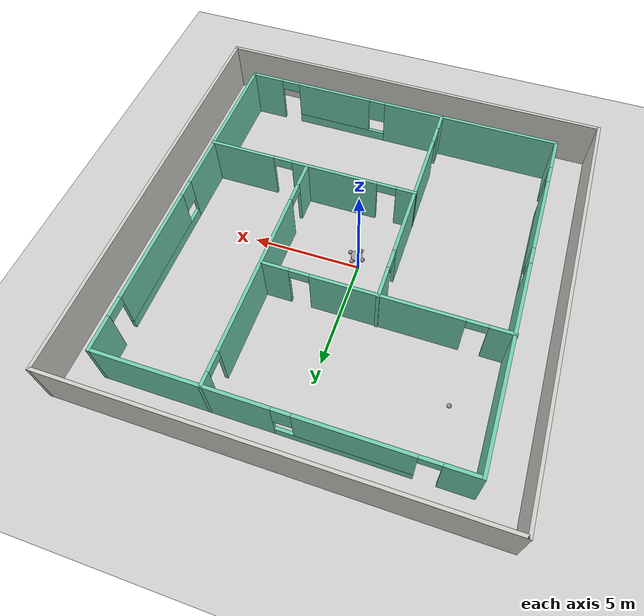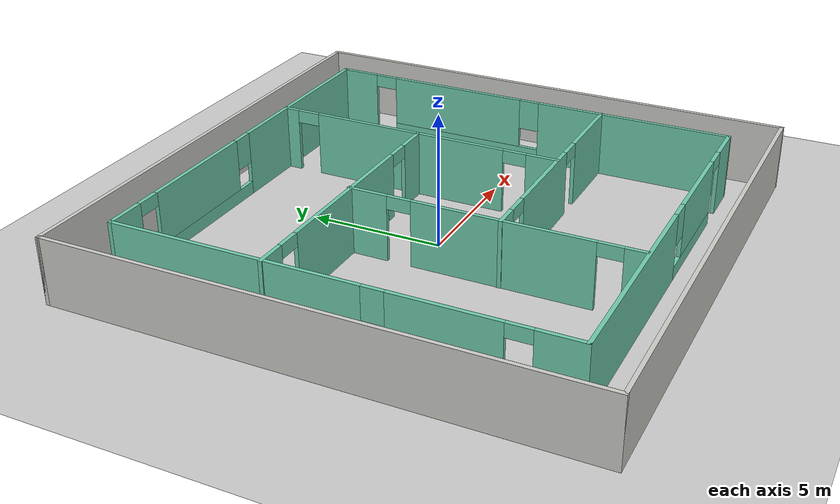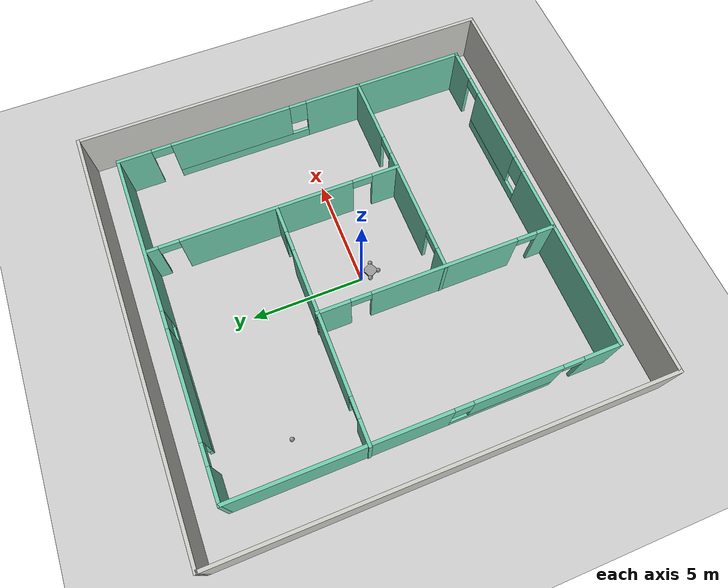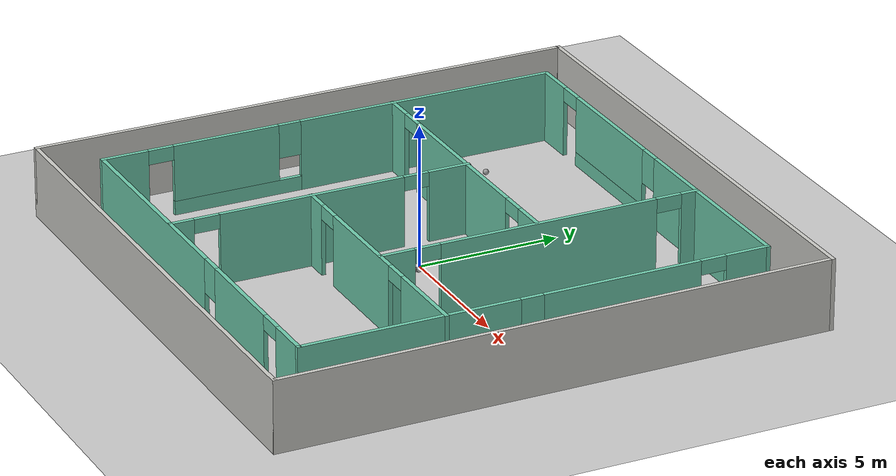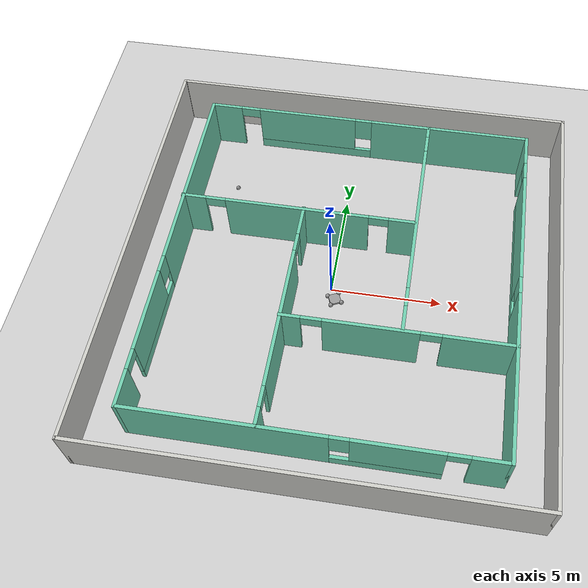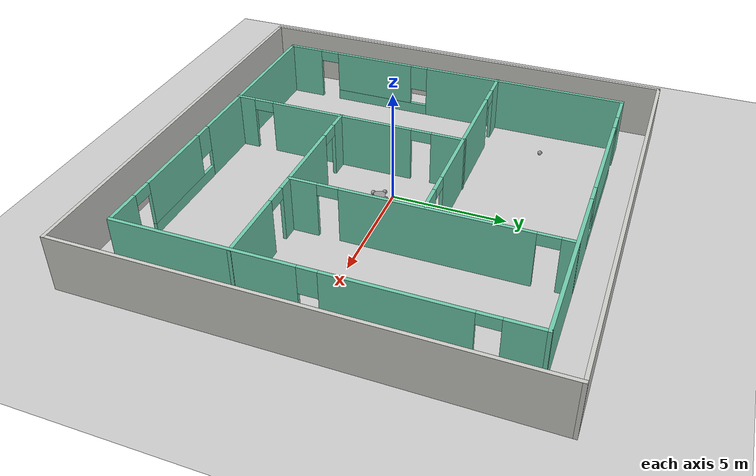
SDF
<sdf version="1.6">
 <world name="default">
  <model name="ground_plane">
   <static>1</static>
   <link name="link">
    <collision name="collision">
     <geometry><plane><normal>0 0 1</normal><size>100 100</size></plane></geometry>
     <surface>
      <contact><collide_bitmask>65535</collide_bitmask></contact>
      <friction><ode><mu>100</mu><mu2>50</mu2></ode></friction>
     </surface>
    </collision>
    <visual name="visual">
     <cast_shadows>0</cast_shadows>
     <geometry><plane><normal>0 0 1</normal><size>100 100</size></plane></geometry>
     <material>
      <script><uri>file://media/materials/scripts/gazebo.material</uri><name>Gazebo/Grey</name></script>
     </material>
    </visual>
   </link>
  </model>
  <model name="Building">
   <pose>0.43599 0.01676 0 0 -0 0</pose>
   <link name="Wall_101">
    <pose>-2.08663 -2.75527 0 0 -0 -1.5708</pose>
    <visual name="Wall_101_Visual_0">
     <pose>-4.61745 0 1.25 0 -0 0</pose>
     <geometry><box><size>1.51509 0.15 2.5</size></box></geometry>
     <material>
      <script><uri>file://media/materials/scripts/gazebo.material</uri><name>Gazebo/Grey</name></script>
      <ambient>0.435294 0.796078 0.67451 1</ambient>
     </material>
     <meta><layer>0</layer></meta>
    </visual>
    <collision name="Wall_101_Collision_0">
     <geometry><box><size>1.51509 0.15 2.5</size></box></geometry>
     <pose>-4.61745 0 1.25 0 -0 0</pose>
    </collision>
    <visual name="Wall_101_Visual_1">
     <pose>0.323003 0 1.25 0 -0 0</pose>
     <geometry><box><size>6.56583 0.15 2.5</size></box></geometry>
     <material>
      <script><uri>file://media/materials/scripts/gazebo.material</uri><name>Gazebo/Grey</name></script>
      <ambient>0.435294 0.796078 0.67451 1</ambient>
     </material>
     <meta><layer>0</layer></meta>
    </visual>
    <collision name="Wall_101_Collision_1">
     <geometry><box><size>6.56583 0.15 2.5</size></box></geometry>
     <pose>0.323003 0 1.25 0 -0 0</pose>
    </collision>
    <visual name="Wall_101_Visual_2">
     <pose>4.94046 0 1.25 0 -0 0</pose>
     <geometry><box><size>0.869084 0.15 2.5</size></box></geometry>
     <material>
      <script><uri>file://media/materials/scripts/gazebo.material</uri><name>Gazebo/Grey</name></script>
      <ambient>0.435294 0.796078 0.67451 1</ambient>
     </material>
     <meta><layer>0</layer></meta>
    </visual>
    <collision name="Wall_101_Collision_2">
     <geometry><box><size>0.869084 0.15 2.5</size></box></geometry>
     <pose>4.94046 0 1.25 0 -0 0</pose>
    </collision>
    <visual name="Wall_101_Visual_3">
     <pose>-3.40991 0 2.25 0 -0 0</pose>
     <geometry><box><size>0.9 0.15 0.5</size></box></geometry>
     <material>
      <script><uri>file://media/materials/scripts/gazebo.material</uri><name>Gazebo/Grey</name></script>
      <ambient>0.435294 0.796078 0.67451 1</ambient>
     </material>
     <meta><layer>0</layer></meta>
    </visual>
    <collision name="Wall_101_Collision_3">
     <geometry><box><size>0.9 0.15 0.5</size></box></geometry>
     <pose>-3.40991 0 2.25 0 -0 0</pose>
    </collision>
    <visual name="Wall_101_Visual_4">
     <pose>4.05592 0 2.25 0 -0 0</pose>
     <geometry><box><size>0.9 0.15 0.5</size></box></geometry>
     <material>
      <script><uri>file://media/materials/scripts/gazebo.material</uri><name>Gazebo/Grey</name></script>
      <ambient>0.435294 0.796078 0.67451 1</ambient>
     </material>
     <meta><layer>0</layer></meta>
    </visual>
    <collision name="Wall_101_Collision_4">
     <geometry><box><size>0.9 0.15 0.5</size></box></geometry>
     <pose>4.05592 0 2.25 0 -0 0</pose>
    </collision>
   </link>
   <link name="Wall_84">
    <collision name="Wall_84_Collision">
     <geometry><box><size>19.5 0.15 2.5</size></box></geometry>
     <pose>0 0 1.25 0 -0 0</pose>
    </collision>
    <visual name="Wall_84_Visual">
     <pose>0 0 1.25 0 -0 0</pose>
     <geometry><box><size>19.5 0.15 2.5</size></box></geometry>
     <material>
      <script><uri>file://media/materials/scripts/gazebo.material</uri><name>Gazebo/CeilingTiled</name></script>
      <ambient>1 1 1 1</ambient>
     </material>
     <meta><layer>0</layer></meta>
    </visual>
    <pose>-9.425 0 0 0 -0 -1.5708</pose>
   </link>
   <link name="Wall_85">
    <collision name="Wall_85_Collision">
     <geometry><box><size>19 0.15 2.5</size></box></geometry>
     <pose>0 0 1.25 0 -0 0</pose>
    </collision>
    <visual name="Wall_85_Visual">
     <pose>0 0 1.25 0 -0 0</pose>
     <geometry><box><size>19 0.15 2.5</size></box></geometry>
     <material>
      <script><uri>file://media/materials/scripts/gazebo.material</uri><name>Gazebo/CeilingTiled</name></script>
      <ambient>1 1 1 1</ambient>
     </material>
     <meta><layer>0</layer></meta>
    </visual>
    <pose>0 -9.675 0 0 -0 0</pose>
   </link>
   <link name="Wall_86">
    <collision name="Wall_86_Collision">
     <geometry><box><size>19.5 0.15 2.5</size></box></geometry>
     <pose>0 0 1.25 0 -0 0</pose>
    </collision>
    <visual name="Wall_86_Visual">
     <pose>0 0 1.25 0 -0 0</pose>
     <geometry><box><size>19.5 0.15 2.5</size></box></geometry>
     <material>
      <script><uri>file://media/materials/scripts/gazebo.material</uri><name>Gazebo/CeilingTiled</name></script>
      <ambient>1 1 1 1</ambient>
     </material>
     <meta><layer>0</layer></meta>
    </visual>
    <pose>9.425 0 0 0 -0 1.5708</pose>
   </link>
   <link name="Wall_87">
    <collision name="Wall_87_Collision">
     <geometry><box><size>19 0.15 2.5</size></box></geometry>
     <pose>0 0 1.25 0 -0 0</pose>
    </collision>
    <visual name="Wall_87_Visual">
     <pose>0 0 1.25 0 -0 0</pose>
     <geometry><box><size>19 0.15 2.5</size></box></geometry>
     <material>
      <script><uri>file://media/materials/scripts/gazebo.material</uri><name>Gazebo/CeilingTiled</name></script>
      <ambient>1 1 1 1</ambient>
     </material>
     <meta><layer>0</layer></meta>
    </visual>
    <pose>0 9.675 0 0 -0 3.14159</pose>
   </link>
   <link name="Wall_88">
    <collision name="Wall_88_Collision">
     <geometry><box><size>0.16 0.15 2.5</size></box></geometry>
     <pose>0 0 1.25 0 -0 0</pose>
    </collision>
    <visual name="Wall_88_Visual">
     <pose>0 0 1.25 0 -0 0</pose>
     <geometry><box><size>0.16 0.15 2.5</size></box></geometry>
     <material>
      <script><uri>file://media/materials/scripts/gazebo.material</uri><name>Gazebo/Grey</name></script>
      <ambient>1 1 1 1</ambient>
     </material>
     <meta><layer>0</layer></meta>
    </visual>
    <pose>-9.42 9.675 0 0 -0 0</pose>
   </link>
   <link name="Wall_90">
    <pose>-7.62558 0.103719 0 0 -0 -1.5708</pose>
    <visual name="Wall_90_Visual_0">
     <pose>-3.59802 0 1.25 0 -0 0</pose>
     <geometry><box><size>9.30396 0.15 2.5</size></box></geometry>
     <material>
      <script><uri>file://media/materials/scripts/gazebo.material</uri><name>Gazebo/Grey</name></script>
      <ambient>0.435294 0.796078 0.67451 1</ambient>
     </material>
     <meta><layer>0</layer></meta>
    </visual>
    <collision name="Wall_90_Collision_0">
     <geometry><box><size>9.30396 0.15 2.5</size></box></geometry>
     <pose>-3.59802 0 1.25 0 -0 0</pose>
    </collision>
    <visual name="Wall_90_Visual_1">
     <pose>7.40961 0 1.25 0 -0 0</pose>
     <geometry><box><size>1.68078 0.15 2.5</size></box></geometry>
     <material>
      <script><uri>file://media/materials/scripts/gazebo.material</uri><name>Gazebo/Grey</name></script>
      <ambient>0.435294 0.796078 0.67451 1</ambient>
     </material>
     <meta><layer>0</layer></meta>
    </visual>
    <collision name="Wall_90_Collision_1">
     <geometry><box><size>1.68078 0.15 2.5</size></box></geometry>
     <pose>7.40961 0 1.25 0 -0 0</pose>
    </collision>
    <visual name="Wall_90_Visual_2">
     <pose>3.36159 0 0.25 0 -0 0</pose>
     <geometry><box><size>4.61526 0.15 0.5</size></box></geometry>
     <material>
      <script><uri>file://media/materials/scripts/gazebo.material</uri><name>Gazebo/Grey</name></script>
      <ambient>0.435294 0.796078 0.67451 1</ambient>
     </material>
     <meta><layer>0</layer></meta>
    </visual>
    <collision name="Wall_90_Collision_2">
     <geometry><box><size>4.61526 0.15 0.5</size></box></geometry>
     <pose>3.36159 0 0.25 0 -0 0</pose>
    </collision>
    <visual name="Wall_90_Visual_3">
     <pose>3.76159 0 1.5 0 -0 0</pose>
     <geometry><box><size>3.81526 0.15 2</size></box></geometry>
     <material>
      <script><uri>file://media/materials/scripts/gazebo.material</uri><name>Gazebo/Grey</name></script>
      <ambient>0.435294 0.796078 0.67451 1</ambient>
     </material>
     <meta><layer>0</layer></meta>
    </visual>
    <collision name="Wall_90_Collision_3">
     <geometry><box><size>3.81526 0.15 2</size></box></geometry>
     <pose>3.76159 0 1.5 0 -0 0</pose>
    </collision>
    <visual name="Wall_90_Visual_4">
     <pose>1.45396 0 1.9 0 -0 0</pose>
     <geometry><box><size>0.8 0.15 1.2</size></box></geometry>
     <material>
      <script><uri>file://media/materials/scripts/gazebo.material</uri><name>Gazebo/Grey</name></script>
      <ambient>0.435294 0.796078 0.67451 1</ambient>
     </material>
     <meta><layer>0</layer></meta>
    </visual>
    <collision name="Wall_90_Collision_4">
     <geometry><box><size>0.8 0.15 1.2</size></box></geometry>
     <pose>1.45396 0 1.9 0 -0 0</pose>
    </collision>
    <visual name="Wall_90_Visual_5">
     <pose>6.11922 0 2.25 0 -0 0</pose>
     <geometry><box><size>0.9 0.15 0.5</size></box></geometry>
     <material>
      <script><uri>file://media/materials/scripts/gazebo.material</uri><name>Gazebo/Grey</name></script>
      <ambient>0.435294 0.796078 0.67451 1</ambient>
     </material>
     <meta><layer>0</layer></meta>
    </visual>
    <collision name="Wall_90_Collision_5">
     <geometry><box><size>0.9 0.15 0.5</size></box></geometry>
     <pose>6.11922 0 2.25 0 -0 0</pose>
    </collision>
   </link>
   <link name="Wall_91">
    <pose>0.049418 -8.07128 0 0 -0 0</pose>
    <visual name="Wall_91_Visual_0">
     <pose>-3.51293 0 1.25 0 -0 0</pose>
     <geometry><box><size>8.47414 0.15 2.5</size></box></geometry>
     <material>
      <script><uri>file://media/materials/scripts/gazebo.material</uri><name>Gazebo/Grey</name></script>
      <ambient>0.435294 0.796078 0.67451 1</ambient>
     </material>
     <meta><layer>0</layer></meta>
    </visual>
    <collision name="Wall_91_Collision_0">
     <geometry><box><size>8.47414 0.15 2.5</size></box></geometry>
     <pose>-3.51293 0 1.25 0 -0 0</pose>
    </collision>
    <visual name="Wall_91_Visual_1">
     <pose>6.94158 0 1.25 0 -0 0</pose>
     <geometry><box><size>1.61685 0.15 2.5</size></box></geometry>
     <material>
      <script><uri>file://media/materials/scripts/gazebo.material</uri><name>Gazebo/Grey</name></script>
      <ambient>0.435294 0.796078 0.67451 1</ambient>
     </material>
     <meta><layer>0</layer></meta>
    </visual>
    <collision name="Wall_91_Collision_1">
     <geometry><box><size>1.61685 0.15 2.5</size></box></geometry>
     <pose>6.94158 0 1.25 0 -0 0</pose>
    </collision>
    <visual name="Wall_91_Visual_2">
     <pose>2.97865 0 0.25 0 -0 0</pose>
     <geometry><box><size>4.50901 0.15 0.5</size></box></geometry>
     <material>
      <script><uri>file://media/materials/scripts/gazebo.material</uri><name>Gazebo/Grey</name></script>
      <ambient>0.435294 0.796078 0.67451 1</ambient>
     </material>
     <meta><layer>0</layer></meta>
    </visual>
    <collision name="Wall_91_Collision_2">
     <geometry><box><size>4.50901 0.15 0.5</size></box></geometry>
     <pose>2.97865 0 0.25 0 -0 0</pose>
    </collision>
    <visual name="Wall_91_Visual_3">
     <pose>3.37865 0 1.5 0 -0 0</pose>
     <geometry><box><size>3.70901 0.15 2</size></box></geometry>
     <material>
      <script><uri>file://media/materials/scripts/gazebo.material</uri><name>Gazebo/Grey</name></script>
      <ambient>0.435294 0.796078 0.67451 1</ambient>
     </material>
     <meta><layer>0</layer></meta>
    </visual>
    <collision name="Wall_91_Collision_3">
     <geometry><box><size>3.70901 0.15 2</size></box></geometry>
     <pose>3.37865 0 1.5 0 -0 0</pose>
    </collision>
    <visual name="Wall_91_Visual_4">
     <pose>1.12414 0 1.9 0 -0 0</pose>
     <geometry><box><size>0.8 0.15 1.2</size></box></geometry>
     <material>
      <script><uri>file://media/materials/scripts/gazebo.material</uri><name>Gazebo/Grey</name></script>
      <ambient>0.435294 0.796078 0.67451 1</ambient>
     </material>
     <meta><layer>0</layer></meta>
    </visual>
    <collision name="Wall_91_Collision_4">
     <geometry><box><size>0.8 0.15 1.2</size></box></geometry>
     <pose>1.12414 0 1.9 0 -0 0</pose>
    </collision>
    <visual name="Wall_91_Visual_5">
     <pose>5.68315 0 2.25 0 -0 0</pose>
     <geometry><box><size>0.9 0.15 0.5</size></box></geometry>
     <material>
      <script><uri>file://media/materials/scripts/gazebo.material</uri><name>Gazebo/Grey</name></script>
      <ambient>0.435294 0.796078 0.67451 1</ambient>
     </material>
     <meta><layer>0</layer></meta>
    </visual>
    <collision name="Wall_91_Collision_5">
     <geometry><box><size>0.9 0.15 0.5</size></box></geometry>
     <pose>5.68315 0 2.25 0 -0 0</pose>
    </collision>
   </link>
   <link name="Wall_92">
    <pose>7.72442 0.103719 0 0 -0 1.5708</pose>
    <visual name="Wall_92_Visual_0">
     <pose>-4.42448 0 1.25 0 -0 0</pose>
     <geometry><box><size>7.65104 0.15 2.5</size></box></geometry>
     <material>
      <script><uri>file://media/materials/scripts/gazebo.material</uri><name>Gazebo/Grey</name></script>
      <ambient>0.435294 0.796078 0.67451 1</ambient>
     </material>
     <meta><layer>0</layer></meta>
    </visual>
    <collision name="Wall_92_Collision_0">
     <geometry><box><size>7.65104 0.15 2.5</size></box></geometry>
     <pose>-4.42448 0 1.25 0 -0 0</pose>
    </collision>
    <visual name="Wall_92_Visual_1">
     <pose>7.45345 0 1.25 0 -0 0</pose>
     <geometry><box><size>1.5931 0.15 2.5</size></box></geometry>
     <material>
      <script><uri>file://media/materials/scripts/gazebo.material</uri><name>Gazebo/Grey</name></script>
      <ambient>0.435294 0.796078 0.67451 1</ambient>
     </material>
     <meta><layer>0</layer></meta>
    </visual>
    <collision name="Wall_92_Collision_1">
     <geometry><box><size>1.5931 0.15 2.5</size></box></geometry>
     <pose>7.45345 0 1.25 0 -0 0</pose>
    </collision>
    <visual name="Wall_92_Visual_2">
     <pose>2.57897 0 0.25 0 -0 0</pose>
     <geometry><box><size>6.35586 0.15 0.5</size></box></geometry>
     <material>
      <script><uri>file://media/materials/scripts/gazebo.material</uri><name>Gazebo/Grey</name></script>
      <ambient>0.435294 0.796078 0.67451 1</ambient>
     </material>
     <meta><layer>0</layer></meta>
    </visual>
    <collision name="Wall_92_Collision_2">
     <geometry><box><size>6.35586 0.15 0.5</size></box></geometry>
     <pose>2.57897 0 0.25 0 -0 0</pose>
    </collision>
    <visual name="Wall_92_Visual_3">
     <pose>2.97897 0 1.5 0 -0 0</pose>
     <geometry><box><size>5.55586 0.15 2</size></box></geometry>
     <material>
      <script><uri>file://media/materials/scripts/gazebo.material</uri><name>Gazebo/Grey</name></script>
      <ambient>0.435294 0.796078 0.67451 1</ambient>
     </material>
     <meta><layer>0</layer></meta>
    </visual>
    <collision name="Wall_92_Collision_3">
     <geometry><box><size>5.55586 0.15 2</size></box></geometry>
     <pose>2.97897 0 1.5 0 -0 0</pose>
    </collision>
    <visual name="Wall_92_Visual_4">
     <pose>-0.198964 0 1.9 0 -0 0</pose>
     <geometry><box><size>0.8 0.15 1.2</size></box></geometry>
     <material>
      <script><uri>file://media/materials/scripts/gazebo.material</uri><name>Gazebo/Grey</name></script>
      <ambient>0.435294 0.796078 0.67451 1</ambient>
     </material>
     <meta><layer>0</layer></meta>
    </visual>
    <collision name="Wall_92_Collision_4">
     <geometry><box><size>0.8 0.15 1.2</size></box></geometry>
     <pose>-0.198964 0 1.9 0 -0 0</pose>
    </collision>
    <visual name="Wall_92_Visual_5">
     <pose>6.2069 0 2.25 0 -0 0</pose>
     <geometry><box><size>0.9 0.15 0.5</size></box></geometry>
     <material>
      <script><uri>file://media/materials/scripts/gazebo.material</uri><name>Gazebo/Grey</name></script>
      <ambient>0.435294 0.796078 0.67451 1</ambient>
     </material>
     <meta><layer>0</layer></meta>
    </visual>
    <collision name="Wall_92_Collision_5">
     <geometry><box><size>0.9 0.15 0.5</size></box></geometry>
     <pose>6.2069 0 2.25 0 -0 0</pose>
    </collision>
   </link>
   <link name="Wall_93">
    <pose>0.049418 8.27872 0 0 -0 3.14159</pose>
    <visual name="Wall_93_Visual_0">
     <pose>-3.97565 0 1.25 0 -0 0</pose>
     <geometry><box><size>7.5487 0.15 2.5</size></box></geometry>
     <material>
      <script><uri>file://media/materials/scripts/gazebo.material</uri><name>Gazebo/Grey</name></script>
      <ambient>0.435294 0.796078 0.67451 1</ambient>
     </material>
     <meta><layer>0</layer></meta>
    </visual>
    <collision name="Wall_93_Collision_0">
     <geometry><box><size>7.5487 0.15 2.5</size></box></geometry>
     <pose>-3.97565 0 1.25 0 -0 0</pose>
    </collision>
    <visual name="Wall_93_Visual_1">
     <pose>6.99241 0 1.25 0 -0 0</pose>
     <geometry><box><size>1.51518 0.15 2.5</size></box></geometry>
     <material>
      <script><uri>file://media/materials/scripts/gazebo.material</uri><name>Gazebo/Grey</name></script>
      <ambient>0.435294 0.796078 0.67451 1</ambient>
     </material>
     <meta><layer>0</layer></meta>
    </visual>
    <collision name="Wall_93_Collision_1">
     <geometry><box><size>1.51518 0.15 2.5</size></box></geometry>
     <pose>6.99241 0 1.25 0 -0 0</pose>
    </collision>
    <visual name="Wall_93_Visual_2">
     <pose>2.56676 0 0.25 0 -0 0</pose>
     <geometry><box><size>5.53612 0.15 0.5</size></box></geometry>
     <material>
      <script><uri>file://media/materials/scripts/gazebo.material</uri><name>Gazebo/Grey</name></script>
      <ambient>0.435294 0.796078 0.67451 1</ambient>
     </material>
     <meta><layer>0</layer></meta>
    </visual>
    <collision name="Wall_93_Collision_2">
     <geometry><box><size>5.53612 0.15 0.5</size></box></geometry>
     <pose>2.56676 0 0.25 0 -0 0</pose>
    </collision>
    <visual name="Wall_93_Visual_3">
     <pose>2.96676 0 1.5 0 -0 0</pose>
     <geometry><box><size>4.73612 0.15 2</size></box></geometry>
     <material>
      <script><uri>file://media/materials/scripts/gazebo.material</uri><name>Gazebo/Grey</name></script>
      <ambient>0.435294 0.796078 0.67451 1</ambient>
     </material>
     <meta><layer>0</layer></meta>
    </visual>
    <collision name="Wall_93_Collision_3">
     <geometry><box><size>4.73612 0.15 2</size></box></geometry>
     <pose>2.96676 0 1.5 0 -0 0</pose>
    </collision>
    <visual name="Wall_93_Visual_4">
     <pose>0.198698 0 1.9 0 -0 0</pose>
     <geometry><box><size>0.8 0.15 1.2</size></box></geometry>
     <material>
      <script><uri>file://media/materials/scripts/gazebo.material</uri><name>Gazebo/Grey</name></script>
      <ambient>0.435294 0.796078 0.67451 1</ambient>
     </material>
     <meta><layer>0</layer></meta>
    </visual>
    <collision name="Wall_93_Collision_4">
     <geometry><box><size>0.8 0.15 1.2</size></box></geometry>
     <pose>0.198698 0 1.9 0 -0 0</pose>
    </collision>
    <visual name="Wall_93_Visual_5">
     <pose>5.78482 0 2.25 0 -0 0</pose>
     <geometry><box><size>0.9 0.15 0.5</size></box></geometry>
     <material>
      <script><uri>file://media/materials/scripts/gazebo.material</uri><name>Gazebo/Grey</name></script>
      <ambient>0.435294 0.796078 0.67451 1</ambient>
     </material>
     <meta><layer>0</layer></meta>
    </visual>
    <collision name="Wall_93_Collision_5">
     <geometry><box><size>0.9 0.15 0.5</size></box></geometry>
     <pose>5.78482 0 2.25 0 -0 0</pose>
    </collision>
   </link>
   <link name="Wall_95">
    <pose>-2.36459 2.50573 0 0 -0 0</pose>
    <visual name="Wall_95_Visual_0">
     <pose>-4.80187 0 1.25 0 -0 0</pose>
     <geometry><box><size>1.14626 0.15 2.5</size></box></geometry>
     <material>
      <script><uri>file://media/materials/scripts/gazebo.material</uri><name>Gazebo/Grey</name></script>
      <ambient>0.435294 0.796078 0.67451 1</ambient>
     </material>
     <meta><layer>0</layer></meta>
    </visual>
    <collision name="Wall_95_Collision_0">
     <geometry><box><size>1.14626 0.15 2.5</size></box></geometry>
     <pose>-4.80187 0 1.25 0 -0 0</pose>
    </collision>
    <visual name="Wall_95_Visual_1">
     <pose>-0.044669 0 1.25 0 -0 0</pose>
     <geometry><box><size>6.56814 0.15 2.5</size></box></geometry>
     <material>
      <script><uri>file://media/materials/scripts/gazebo.material</uri><name>Gazebo/Grey</name></script>
      <ambient>0.435294 0.796078 0.67451 1</ambient>
     </material>
     <meta><layer>0</layer></meta>
    </visual>
    <collision name="Wall_95_Collision_1">
     <geometry><box><size>6.56814 0.15 2.5</size></box></geometry>
     <pose>-0.044669 0 1.25 0 -0 0</pose>
    </collision>
    <visual name="Wall_95_Visual_2">
     <pose>4.7572 0 1.25 0 -0 0</pose>
     <geometry><box><size>1.2356 0.15 2.5</size></box></geometry>
     <material>
      <script><uri>file://media/materials/scripts/gazebo.material</uri><name>Gazebo/Grey</name></script>
      <ambient>0.435294 0.796078 0.67451 1</ambient>
     </material>
     <meta><layer>0</layer></meta>
    </visual>
    <collision name="Wall_95_Collision_2">
     <geometry><box><size>1.2356 0.15 2.5</size></box></geometry>
     <pose>4.7572 0 1.25 0 -0 0</pose>
    </collision>
    <visual name="Wall_95_Visual_3">
     <pose>-3.77874 0 2.25 0 -0 0</pose>
     <geometry><box><size>0.9 0.15 0.5</size></box></geometry>
     <material>
      <script><uri>file://media/materials/scripts/gazebo.material</uri><name>Gazebo/Grey</name></script>
      <ambient>0.435294 0.796078 0.67451 1</ambient>
     </material>
     <meta><layer>0</layer></meta>
    </visual>
    <collision name="Wall_95_Collision_3">
     <geometry><box><size>0.9 0.15 0.5</size></box></geometry>
     <pose>-3.77874 0 2.25 0 -0 0</pose>
    </collision>
    <visual name="Wall_95_Visual_4">
     <pose>3.6894 0 2.25 0 -0 0</pose>
     <geometry><box><size>0.9 0.15 0.5</size></box></geometry>
     <material>
      <script><uri>file://media/materials/scripts/gazebo.material</uri><name>Gazebo/Grey</name></script>
      <ambient>0.435294 0.796078 0.67451 1</ambient>
     </material>
     <meta><layer>0</layer></meta>
    </visual>
    <collision name="Wall_95_Collision_4">
     <geometry><box><size>0.9 0.15 0.5</size></box></geometry>
     <pose>3.6894 0 2.25 0 -0 0</pose>
    </collision>
   </link>
   <link name="Wall_97">
    <pose>3.02325 2.60372 0 0 -0 -1.5708</pose>
    <visual name="Wall_97_Visual_0">
     <pose>-5.42153 0 1.25 0 -0 0</pose>
     <geometry><box><size>0.656941 0.15 2.5</size></box></geometry>
     <material>
      <script><uri>file://media/materials/scripts/gazebo.material</uri><name>Gazebo/Grey</name></script>
      <ambient>0.435294 0.796078 0.67451 1</ambient>
     </material>
     <meta><layer>0</layer></meta>
    </visual>
    <collision name="Wall_97_Collision_0">
     <geometry><box><size>0.656941 0.15 2.5</size></box></geometry>
     <pose>-5.42153 0 1.25 0 -0 0</pose>
    </collision>
    <visual name="Wall_97_Visual_1">
     <pose>-0.309795 0 1.25 0 -0 0</pose>
     <geometry><box><size>7.76653 0.15 2.5</size></box></geometry>
     <material>
      <script><uri>file://media/materials/scripts/gazebo.material</uri><name>Gazebo/Grey</name></script>
      <ambient>0.435294 0.796078 0.67451 1</ambient>
     </material>
     <meta><layer>0</layer></meta>
    </visual>
    <collision name="Wall_97_Collision_1">
     <geometry><box><size>7.76653 0.15 2.5</size></box></geometry>
     <pose>-0.309795 0 1.25 0 -0 0</pose>
    </collision>
    <visual name="Wall_97_Visual_2">
     <pose>5.11174 0 1.25 0 -0 0</pose>
     <geometry><box><size>1.27653 0.15 2.5</size></box></geometry>
     <material>
      <script><uri>file://media/materials/scripts/gazebo.material</uri><name>Gazebo/Grey</name></script>
      <ambient>0.435294 0.796078 0.67451 1</ambient>
     </material>
     <meta><layer>0</layer></meta>
    </visual>
    <collision name="Wall_97_Collision_2">
     <geometry><box><size>1.27653 0.15 2.5</size></box></geometry>
     <pose>5.11174 0 1.25 0 -0 0</pose>
    </collision>
    <visual name="Wall_97_Visual_3">
     <pose>-4.64306 0 2.25 0 -0 0</pose>
     <geometry><box><size>0.9 0.15 0.5</size></box></geometry>
     <material>
      <script><uri>file://media/materials/scripts/gazebo.material</uri><name>Gazebo/Grey</name></script>
      <ambient>0.435294 0.796078 0.67451 1</ambient>
     </material>
     <meta><layer>0</layer></meta>
    </visual>
    <collision name="Wall_97_Collision_3">
     <geometry><box><size>0.9 0.15 0.5</size></box></geometry>
     <pose>-4.64306 0 2.25 0 -0 0</pose>
    </collision>
    <visual name="Wall_97_Visual_4">
     <pose>4.02347 0 2.25 0 -0 0</pose>
     <geometry><box><size>0.9 0.15 0.5</size></box></geometry>
     <material>
      <script><uri>file://media/materials/scripts/gazebo.material</uri><name>Gazebo/Grey</name></script>
      <ambient>0.435294 0.796078 0.67451 1</ambient>
     </material>
     <meta><layer>0</layer></meta>
    </visual>
    <collision name="Wall_97_Collision_4">
     <geometry><box><size>0.9 0.15 0.5</size></box></geometry>
     <pose>4.02347 0 2.25 0 -0 0</pose>
    </collision>
   </link>
   <link name="Wall_99">
    <pose>2.81806 -3.07223 0 0 -0 3.14159</pose>
    <visual name="Wall_99_Visual_0">
     <pose>-3.42162 0 1.25 0 -0 0</pose>
     <geometry><box><size>3.15675 0.15 2.5</size></box></geometry>
     <material>
      <script><uri>file://media/materials/scripts/gazebo.material</uri><name>Gazebo/Grey</name></script>
      <ambient>0.435294 0.796078 0.67451 1</ambient>
     </material>
     <meta><layer>0</layer></meta>
    </visual>
    <collision name="Wall_99_Collision_0">
     <geometry><box><size>3.15675 0.15 2.5</size></box></geometry>
     <pose>-3.42162 0 1.25 0 -0 0</pose>
    </collision>
    <visual name="Wall_99_Visual_1">
     <pose>1.10318 0 1.25 0 -0 0</pose>
     <geometry><box><size>4.09286 0.15 2.5</size></box></geometry>
     <material>
      <script><uri>file://media/materials/scripts/gazebo.material</uri><name>Gazebo/Grey</name></script>
      <ambient>0.435294 0.796078 0.67451 1</ambient>
     </material>
     <meta><layer>0</layer></meta>
    </visual>
    <collision name="Wall_99_Collision_1">
     <geometry><box><size>4.09286 0.15 2.5</size></box></geometry>
     <pose>1.10318 0 1.25 0 -0 0</pose>
    </collision>
    <visual name="Wall_99_Visual_2">
     <pose>4.52481 0 1.25 0 -0 0</pose>
     <geometry><box><size>0.950387 0.15 2.5</size></box></geometry>
     <material>
      <script><uri>file://media/materials/scripts/gazebo.material</uri><name>Gazebo/Grey</name></script>
      <ambient>0.435294 0.796078 0.67451 1</ambient>
     </material>
     <meta><layer>0</layer></meta>
    </visual>
    <collision name="Wall_99_Collision_2">
     <geometry><box><size>0.950387 0.15 2.5</size></box></geometry>
     <pose>4.52481 0 1.25 0 -0 0</pose>
    </collision>
    <visual name="Wall_99_Visual_3">
     <pose>-1.39325 0 2.25 0 -0 0</pose>
     <geometry><box><size>0.9 0.15 0.5</size></box></geometry>
     <material>
      <script><uri>file://media/materials/scripts/gazebo.material</uri><name>Gazebo/Grey</name></script>
      <ambient>0.435294 0.796078 0.67451 1</ambient>
     </material>
     <meta><layer>0</layer></meta>
    </visual>
    <collision name="Wall_99_Collision_3">
     <geometry><box><size>0.9 0.15 0.5</size></box></geometry>
     <pose>-1.39325 0 2.25 0 -0 0</pose>
    </collision>
    <visual name="Wall_99_Visual_4">
     <pose>3.59961 0 2.25 0 -0 0</pose>
     <geometry><box><size>0.9 0.15 0.5</size></box></geometry>
     <material>
      <script><uri>file://media/materials/scripts/gazebo.material</uri><name>Gazebo/Grey</name></script>
      <ambient>0.435294 0.796078 0.67451 1</ambient>
     </material>
     <meta><layer>0</layer></meta>
    </visual>
    <collision name="Wall_99_Collision_4">
     <geometry><box><size>0.9 0.15 0.5</size></box></geometry>
     <pose>3.59961 0 2.25 0 -0 0</pose>
    </collision>
   </link>
   <static>1</static>
  </model>
  <model name="Robot2_0">
   <link name="link_1">
    <pose>0 0 0.1 0 -0 0</pose>
    <inertial>
     <mass>1</mass>
     <inertia>
      <ixx>0.166667</ixx>
      <ixy>0</ixy>
      <ixz>0</ixz>
      <iyy>0.166667</iyy>
      <iyz>0</iyz>
      <izz>0.166667</izz>
     </inertia>
    </inertial>
    <visual name="visual">
     <geometry><box><size>0.5 0.5 0.1</size></box></geometry>
     <material>
      <lighting>1</lighting>
      <script><uri>file://media/materials/scripts/gazebo.material</uri><name>Gazebo/Grey</name></script>
      <ambient>0.3 0.3 0.3 1</ambient>
      <diffuse>0.7 0.7 0.7 1</diffuse>
      <specular>0.01 0.01 0.01 1</specular>
      <emissive>0 0 0 1</emissive>
      <shader type="vertex"><normal_map>__default__</normal_map></shader>
     </material>
    </visual>
    <collision name="collision">
     <geometry><box><size>0.5 0.5 0.1</size></box></geometry>
     <surface>
      <friction>
       <ode><mu>1</mu><mu2>1</mu2><fdir1>0 0 0</fdir1><slip1>0</slip1><slip2>0</slip2></ode>
       <torsional>
        <coefficient>1</coefficient>
        <patch_radius>0</patch_radius>
        <surface_radius>0</surface_radius>
        <use_patch_radius>1</use_patch_radius>
        <ode><slip>0</slip></ode>
       </torsional>
      </friction>
      <bounce><restitution_coefficient>0</restitution_coefficient><threshold>1e+06</threshold></bounce>
      <contact>
       <collide_without_contact>0</collide_without_contact>
       <collide_without_contact_bitmask>1</collide_without_contact_bitmask>
       <collide_bitmask>1</collide_bitmask>
       <ode>
        <soft_cfm>0</soft_cfm>
        <soft_erp>0.2</soft_erp>
        <kp>1e+13</kp>
        <kd>1</kd>
        <max_vel>0.01</max_vel>
        <min_depth>0</min_depth>
       </ode>
       <bullet>
        <split_impulse>1</split_impulse>
        <split_impulse_penetration_threshold>-0.01</split_impulse_penetration_threshold>
        <soft_cfm>0</soft_cfm>
        <soft_erp>0.2</soft_erp>
        <kp>1e+13</kp>
        <kd>1</kd>
       </bullet>
      </contact>
     </surface>
    </collision>
   </link>
   <link name="link_2">
    <pose>0.25 0.25 0.1 0 -0 0</pose>
    <inertial>
     <mass>1</mass>
     <inertia><ixx>0.1</ixx><ixy>0</ixy><ixz>0</ixz><iyy>0.1</iyy><iyz>0</iyz><izz>0.1</izz></inertia>
    </inertial>
    <visual name="visual">
     <geometry><sphere><radius>0.1</radius></sphere></geometry>
     <material>
      <lighting>1</lighting>
      <script><uri>file://media/materials/scripts/gazebo.material</uri><name>Gazebo/Grey</name></script>
      <ambient>0.3 0.3 0.3 1</ambient>
      <diffuse>0.7 0.7 0.7 1</diffuse>
      <specular>0.01 0.01 0.01 1</specular>
      <emissive>0 0 0 1</emissive>
      <shader type="vertex"><normal_map>__default__</normal_map></shader>
     </material>
    </visual>
    <collision name="collision">
     <geometry><sphere><radius>0.1</radius></sphere></geometry>
     <surface>
      <friction>
       <ode><mu>1</mu><mu2>1</mu2><fdir1>0 0 0</fdir1><slip1>0</slip1><slip2>0</slip2></ode>
       <torsional>
        <coefficient>1</coefficient>
        <patch_radius>0</patch_radius>
        <surface_radius>0</surface_radius>
        <use_patch_radius>1</use_patch_radius>
        <ode><slip>0</slip></ode>
       </torsional>
      </friction>
      <bounce><restitution_coefficient>0</restitution_coefficient><threshold>1e+06</threshold></bounce>
      <contact>
       <collide_without_contact>0</collide_without_contact>
       <collide_without_contact_bitmask>1</collide_without_contact_bitmask>
       <collide_bitmask>1</collide_bitmask>
       <ode>
        <soft_cfm>0</soft_cfm>
        <soft_erp>0.2</soft_erp>
        <kp>1e+13</kp>
        <kd>1</kd>
        <max_vel>0.01</max_vel>
        <min_depth>0</min_depth>
       </ode>
       <bullet>
        <split_impulse>1</split_impulse>
        <split_impulse_penetration_threshold>-0.01</split_impulse_penetration_threshold>
        <soft_cfm>0</soft_cfm>
        <soft_erp>0.2</soft_erp>
        <kp>1e+13</kp>
        <kd>1</kd>
       </bullet>
      </contact>
     </surface>
    </collision>
   </link>
   <link name="link_2_clone">
    <pose>0.25 -0.25 0.1 0 -0 0</pose>
    <inertial>
     <mass>1</mass>
     <inertia><ixx>0.1</ixx><ixy>0</ixy><ixz>0</ixz><iyy>0.1</iyy><iyz>0</iyz><izz>0.1</izz></inertia>
    </inertial>
    <visual name="visual">
     <geometry><sphere><radius>0.1</radius></sphere></geometry>
     <material>
      <lighting>1</lighting>
      <script><uri>file://media/materials/scripts/gazebo.material</uri><name>Gazebo/Grey</name></script>
      <ambient>0.3 0.3 0.3 1</ambient>
      <diffuse>0.7 0.7 0.7 1</diffuse>
      <specular>0.01 0.01 0.01 1</specular>
      <emissive>0 0 0 1</emissive>
      <shader type="vertex"><normal_map>__default__</normal_map></shader>
     </material>
    </visual>
    <collision name="collision">
     <geometry><sphere><radius>0.1</radius></sphere></geometry>
     <surface>
      <friction>
       <ode><mu>1</mu><mu2>1</mu2><fdir1>0 0 0</fdir1><slip1>0</slip1><slip2>0</slip2></ode>
       <torsional>
        <coefficient>1</coefficient>
        <patch_radius>0</patch_radius>
        <surface_radius>0</surface_radius>
        <use_patch_radius>1</use_patch_radius>
        <ode><slip>0</slip></ode>
       </torsional>
      </friction>
      <bounce><restitution_coefficient>0</restitution_coefficient><threshold>1e+06</threshold></bounce>
      <contact>
       <collide_without_contact>0</collide_without_contact>
       <collide_without_contact_bitmask>1</collide_without_contact_bitmask>
       <collide_bitmask>1</collide_bitmask>
       <ode>
        <soft_cfm>0</soft_cfm>
        <soft_erp>0.2</soft_erp>
        <kp>1e+13</kp>
        <kd>1</kd>
        <max_vel>0.01</max_vel>
        <min_depth>0</min_depth>
       </ode>
       <bullet>
        <split_impulse>1</split_impulse>
        <split_impulse_penetration_threshold>-0.01</split_impulse_penetration_threshold>
        <soft_cfm>0</soft_cfm>
        <soft_erp>0.2</soft_erp>
        <kp>1e+13</kp>
        <kd>1</kd>
       </bullet>
      </contact>
     </surface>
    </collision>
   </link>
   <link name="link_2_clone_0">
    <pose>-0.25 0.25 0.1 0 -0 0</pose>
    <inertial>
     <mass>1</mass>
     <inertia><ixx>0.1</ixx><ixy>0</ixy><ixz>0</ixz><iyy>0.1</iyy><iyz>0</iyz><izz>0.1</izz></inertia>
    </inertial>
    <visual name="visual">
     <geometry><sphere><radius>0.1</radius></sphere></geometry>
     <material>
      <lighting>1</lighting>
      <script><uri>file://media/materials/scripts/gazebo.material</uri><name>Gazebo/Grey</name></script>
      <ambient>0.3 0.3 0.3 1</ambient>
      <diffuse>0.7 0.7 0.7 1</diffuse>
      <specular>0.01 0.01 0.01 1</specular>
      <emissive>0 0 0 1</emissive>
      <shader type="vertex"><normal_map>__default__</normal_map></shader>
     </material>
    </visual>
    <collision name="collision">
     <geometry><sphere><radius>0.1</radius></sphere></geometry>
     <surface>
      <friction>
       <ode><mu>1</mu><mu2>1</mu2><fdir1>0 0 0</fdir1><slip1>0</slip1><slip2>0</slip2></ode>
       <torsional>
        <coefficient>1</coefficient>
        <patch_radius>0</patch_radius>
        <surface_radius>0</surface_radius>
        <use_patch_radius>1</use_patch_radius>
        <ode><slip>0</slip></ode>
       </torsional>
      </friction>
      <bounce><restitution_coefficient>0</restitution_coefficient><threshold>1e+06</threshold></bounce>
      <contact>
       <collide_without_contact>0</collide_without_contact>
       <collide_without_contact_bitmask>1</collide_without_contact_bitmask>
       <collide_bitmask>1</collide_bitmask>
       <ode>
        <soft_cfm>0</soft_cfm>
        <soft_erp>0.2</soft_erp>
        <kp>1e+13</kp>
        <kd>1</kd>
        <max_vel>0.01</max_vel>
        <min_depth>0</min_depth>
       </ode>
       <bullet>
        <split_impulse>1</split_impulse>
        <split_impulse_penetration_threshold>-0.01</split_impulse_penetration_threshold>
        <soft_cfm>0</soft_cfm>
        <soft_erp>0.2</soft_erp>
        <kp>1e+13</kp>
        <kd>1</kd>
       </bullet>
      </contact>
     </surface>
    </collision>
   </link>
   <link name="link_2_clone_1">
    <pose>-0.25 -0.25 0.1 0 -0 0</pose>
    <inertial>
     <mass>1</mass>
     <inertia><ixx>0.1</ixx><ixy>0</ixy><ixz>0</ixz><iyy>0.1</iyy><iyz>0</iyz><izz>0.1</izz></inertia>
    </inertial>
    <visual name="visual">
     <geometry><sphere><radius>0.1</radius></sphere></geometry>
     <material>
      <lighting>1</lighting>
      <script><uri>file://media/materials/scripts/gazebo.material</uri><name>Gazebo/Grey</name></script>
      <ambient>0.3 0.3 0.3 1</ambient>
      <diffuse>0.7 0.7 0.7 1</diffuse>
      <specular>0.01 0.01 0.01 1</specular>
      <emissive>0 0 0 1</emissive>
      <shader type="vertex"><normal_map>__default__</normal_map></shader>
     </material>
    </visual>
    <collision name="collision">
     <geometry><sphere><radius>0.1</radius></sphere></geometry>
     <surface>
      <friction>
       <ode><mu>1</mu><mu2>1</mu2><fdir1>0 0 0</fdir1><slip1>0</slip1><slip2>0</slip2></ode>
       <torsional>
        <coefficient>1</coefficient>
        <patch_radius>0</patch_radius>
        <surface_radius>0</surface_radius>
        <use_patch_radius>1</use_patch_radius>
        <ode><slip>0</slip></ode>
       </torsional>
      </friction>
      <bounce><restitution_coefficient>0</restitution_coefficient><threshold>1e+06</threshold></bounce>
      <contact>
       <collide_without_contact>0</collide_without_contact>
       <collide_without_contact_bitmask>1</collide_without_contact_bitmask>
       <collide_bitmask>1</collide_bitmask>
       <ode>
        <soft_cfm>0</soft_cfm>
        <soft_erp>0.2</soft_erp>
        <kp>1e+13</kp>
        <kd>1</kd>
        <max_vel>0.01</max_vel>
        <min_depth>0</min_depth>
       </ode>
       <bullet>
        <split_impulse>1</split_impulse>
        <split_impulse_penetration_threshold>-0.01</split_impulse_penetration_threshold>
        <soft_cfm>0</soft_cfm>
        <soft_erp>0.2</soft_erp>
        <kp>1e+13</kp>
        <kd>1</kd>
       </bullet>
      </contact>
     </surface>
    </collision>
   </link>
   <joint name="link_1_JOINT_0" type="revolute">
    <parent>link_1</parent>
    <child>link_2_clone_0</child>
    <axis>
     <xyz>0.5 -0.5 0</xyz>
     <use_parent_model_frame>0</use_parent_model_frame>
     <limit>
      <lower>-1.79769e+308</lower>
      <upper>1.79769e+308</upper>
      <effort>-1</effort>
      <velocity>-1</velocity>
     </limit>
     <dynamics>
      <spring_reference>0</spring_reference>
      <spring_stiffness>0</spring_stiffness>
      <damping>0</damping>
     </dynamics>
    </axis>
    <physics>
     <ode><limit><cfm>0</cfm><erp>0.2</erp></limit><suspension><cfm>0</cfm><erp>0.2</erp></suspension></ode>
    </physics>
   </joint>
   <joint name="link_1_JOINT_1" type="revolute">
    <parent>link_1</parent>
    <child>link_2_clone_1</child>
    <axis>
     <xyz>0.5 0.5 0</xyz>
     <use_parent_model_frame>0</use_parent_model_frame>
     <limit>
      <lower>-1.79769e+308</lower>
      <upper>1.79769e+308</upper>
      <effort>-1</effort>
      <velocity>-1</velocity>
     </limit>
     <dynamics>
      <spring_reference>0</spring_reference>
      <spring_stiffness>0</spring_stiffness>
      <damping>0</damping>
     </dynamics>
    </axis>
    <physics>
     <ode><limit><cfm>0</cfm><erp>0.2</erp></limit><suspension><cfm>0</cfm><erp>0.2</erp></suspension></ode>
    </physics>
   </joint>
   <joint name="link_1_JOINT_2" type="revolute">
    <parent>link_1</parent>
    <child>link_2_clone</child>
    <axis>
     <xyz>-0.5 0.5 0</xyz>
     <use_parent_model_frame>0</use_parent_model_frame>
     <limit>
      <lower>-1.79769e+308</lower>
      <upper>1.79769e+308</upper>
      <effort>-1</effort>
      <velocity>-1</velocity>
     </limit>
     <dynamics>
      <spring_reference>0</spring_reference>
      <spring_stiffness>0</spring_stiffness>
      <damping>0</damping>
     </dynamics>
    </axis>
    <physics>
     <ode><limit><cfm>0</cfm><erp>0.2</erp></limit><suspension><cfm>0</cfm><erp>0.2</erp></suspension></ode>
    </physics>
   </joint>
   <joint name="link_1_JOINT_3" type="revolute">
    <parent>link_1</parent>
    <child>link_2</child>
    <axis>
     <xyz>-0.5 -0.5 0</xyz>
     <use_parent_model_frame>0</use_parent_model_frame>
     <limit>
      <lower>-1.79769e+308</lower>
      <upper>1.79769e+308</upper>
      <effort>-1</effort>
      <velocity>-1</velocity>
     </limit>
     <dynamics>
      <spring_reference>0</spring_reference>
      <spring_stiffness>0</spring_stiffness>
      <damping>0</damping>
     </dynamics>
    </axis>
    <physics>
     <ode><limit><cfm>0</cfm><erp>0.2</erp></limit><suspension><cfm>0</cfm><erp>0.2</erp></suspension></ode>
    </physics>
   </joint>
   <static>0</static>
   <pose>0.236279 -0.529244 0 0 0 -1.14064</pose>
  </model>
  <model name="my_ball">
   <link name="link_0">
    <inertial>
     <mass>1</mass>
     <inertia><ixx>0.1</ixx><ixy>0</ixy><ixz>0</ixz><iyy>0.1</iyy><iyz>0</iyz><izz>0.1</izz></inertia>
    </inertial>
    <visual name="visual">
     <geometry><sphere><radius>0.1</radius></sphere></geometry>
     <material>
      <lighting>1</lighting>
      <script><uri>file://media/materials/scripts/gazebo.material</uri><name>Gazebo/Grey</name></script>
      <ambient>1 1 1 1</ambient>
      <diffuse>1 1 1 1</diffuse>
      <specular>1 1 1 1</specular>
      <emissive>1 1 1 1</emissive>
      <shader type="vertex"><normal_map>__default__</normal_map></shader>
     </material>
    </visual>
    <collision name="collision">
     <geometry><sphere><radius>0.1</radius></sphere></geometry>
     <surface>
      <friction>
       <ode><mu>1</mu><mu2>1</mu2><fdir1>0 0 0</fdir1><slip1>0</slip1><slip2>0</slip2></ode>
       <torsional>
        <coefficient>1</coefficient>
        <patch_radius>0</patch_radius>
        <surface_radius>0</surface_radius>
        <use_patch_radius>1</use_patch_radius>
        <ode><slip>0</slip></ode>
       </torsional>
      </friction>
      <bounce><restitution_coefficient>0</restitution_coefficient><threshold>1e+06</threshold></bounce>
      <contact>
       <collide_without_contact>0</collide_without_contact>
       <collide_without_contact_bitmask>1</collide_without_contact_bitmask>
       <collide_bitmask>1</collide_bitmask>
       <ode>
        <soft_cfm>0</soft_cfm>
        <soft_erp>0.2</soft_erp>
        <kp>1e+13</kp>
        <kd>1</kd>
        <max_vel>0.01</max_vel>
        <min_depth>0</min_depth>
       </ode>
       <bullet>
        <split_impulse>1</split_impulse>
        <split_impulse_penetration_threshold>-0.01</split_impulse_penetration_threshold>
        <soft_cfm>0</soft_cfm>
        <soft_erp>0.2</soft_erp>
        <kp>1e+13</kp>
        <kd>1</kd>
       </bullet>
      </contact>
     </surface>
    </collision>
   </link>
   <static>0</static>
   <pose>-5.49399 5.16228 0.1 0 -0 0</pose>
  </model>
 </world>
</sdf>
